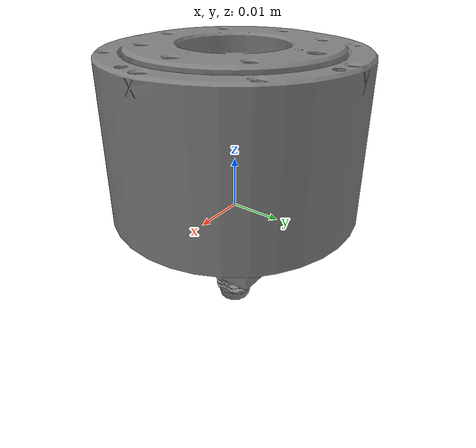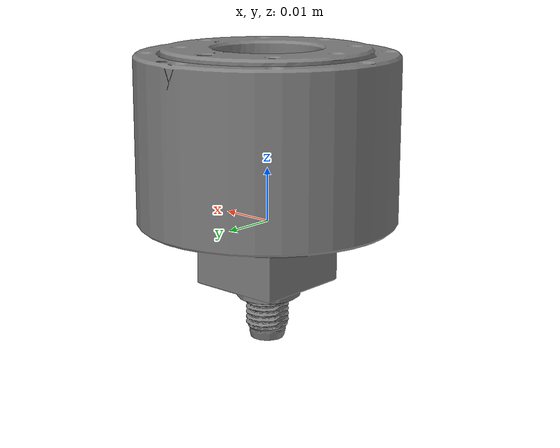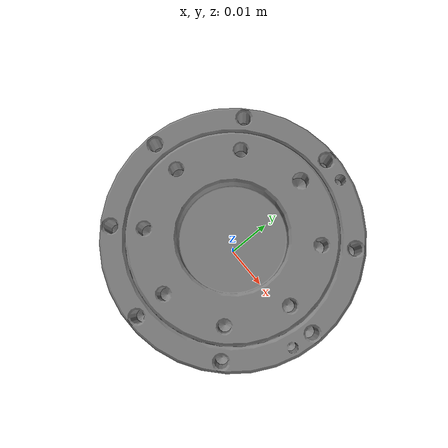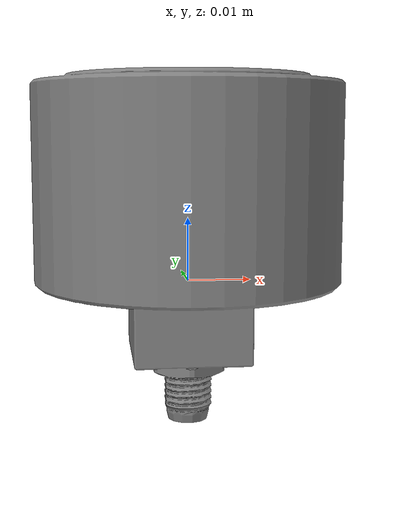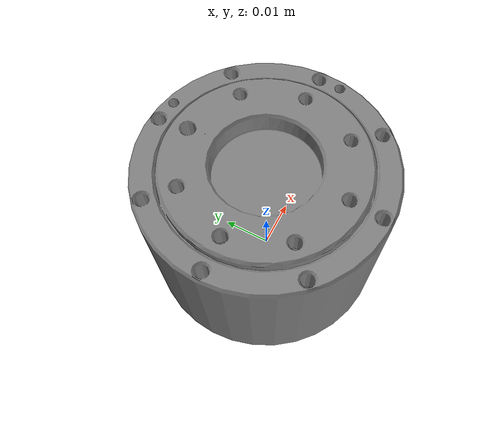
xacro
<?xml version="1.0"?>
<robot xmlns:xacro="http://wiki.ros.org/xacro"
       name="sensor" >

  <xacro:arg name="prefix" default="ft_sensor0"/>

  <xacro:include filename="$(find rokubimini_description)/urdf/BFT_MEDA_ECAT_M8.urdf.xacro" />

  <xacro:BFT_MEDA_ECAT_M8 prefix="$(arg prefix)" />

  <link name="world" />

  <joint name="world_joint" type="fixed">
    <parent link="world" />
    <child link = "$(arg prefix)_mounting" />
    <origin xyz="0.0 0.0 0.0" rpy="0.0 0.0 0.0" />
  </joint>

</robot>

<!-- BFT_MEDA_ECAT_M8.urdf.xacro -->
<robot xmlns:xacro="http://wiki.ros.org/xacro">
  <xacro:macro name="BFT_MEDA_ECAT_M8" params="prefix">
    <link
      name="${prefix}_mounting">
      <inertial>
        <origin
          xyz="-3.4289E-05 -8.748E-06 0.011774"
          rpy="0 0 0" />
        <mass
          value="0.079245" />
        <inertia
          ixx="1.7971E-05"
          ixy="6.1917E-11"
          ixz="-3.2222E-10"
          iyy="1.7985E-05"
          iyz="-1.3775E-09"
          izz="2.7485E-05" />
      </inertial>
      <visual>
        <origin
          xyz="0 0 0"
          rpy="0 0 0" />
        <geometry>
          <mesh
            filename="package://rokubimini_description/meshes/BFT_MEDA_M8/mounting.STL" />
        </geometry>
        <material name="Bota_material">
          <color rgba="0.50196 0.50196 0.50196 1" />
        </material>
      </visual>
      <collision>
        <origin
          xyz="0 0 0.0155"
          rpy="0 0 0" />
        <geometry>
          <cylinder radius="0.024" length="0.031"/>
        </geometry>
      </collision>
      <collision>
        <origin
          xyz="0 0 -0.006"
          rpy="0 0 0" />
        <geometry>
          <box size="0.019 0.019 0.012" />
        </geometry>
      </collision>
      <collision>
        <origin
          xyz="0 0 -0.026"
          rpy="0 0 0" />
        <geometry>
          <cylinder radius="0.0065" length="0.032"/>
        </geometry>
      </collision>
      <collision>
        <origin
          xyz="0 0 0.023"
          rpy="0 0 0" />
        <geometry>
          <cylinder radius="0.019" length="0.018"/>
        </geometry>
      </collision>
    </link>
    <link
      name="${prefix}_imu">
      <inertial>
        <origin
          xyz="-7.28164825397966E-05 1.54951151716367E-05 -0.00279059266096019"
          rpy="0 0 0" />
        <mass
          value="0.00841533584597403" />
        <inertia
          ixx="4.36835040253873E-07"
          ixy="-6.98609475826361E-11"
          ixz="-6.08397666812248E-15"
          iyy="4.41035649008906E-07"
          iyz="1.10331483799463E-11"
          izz="8.74962095262397E-07" />
      </inertial>
    </link>
    <joint
      name="mounting_to_imu"
      type="fixed">
      <origin
        xyz="0 0 0.0098"
        rpy="0 0 0" />
      <parent
        link="${prefix}_mounting" />
      <child
        link="${prefix}_imu" />
      <axis
        xyz="0 0 0" />
    </joint>
    <link
      name="${prefix}_wrench">
      <inertial>
        <origin
          xyz="-7.5970916485037E-09 -7.25481053712932E-06 -0.00716049522817544"
          rpy="0 0 0" />
        <mass
          value="0.0269702356134771" />
        <inertia
          ixx="3.08057860883569E-06"
          ixy="3.28313270947876E-15"
          ixz="1.46228669279456E-12"
          iyy="3.08365849171961E-06"
          iyz="1.49625149931379E-09"
          izz="4.82247292142798E-06" />
      </inertial>
    </link>
    <joint
      name="mounting_to_wrench"
      type="fixed">
      <origin
        xyz="0 0 0.032"
        rpy="0 0 0" />
      <parent
        link="${prefix}_mounting" />
      <child
        link="${prefix}_wrench" />
      <axis
        xyz="0 0 0" />
    </joint>
  </xacro:macro>
</robot>
